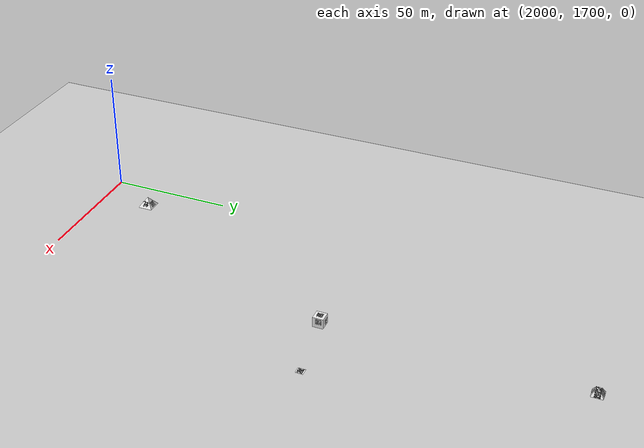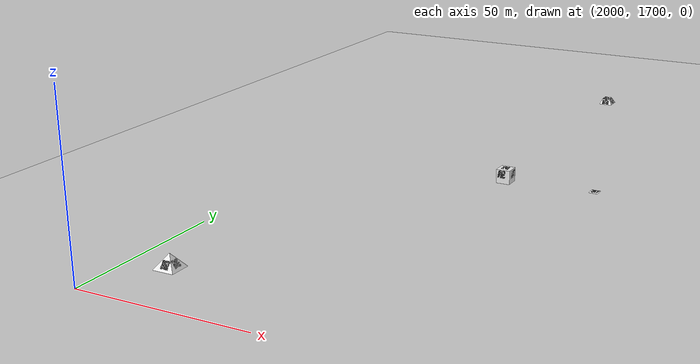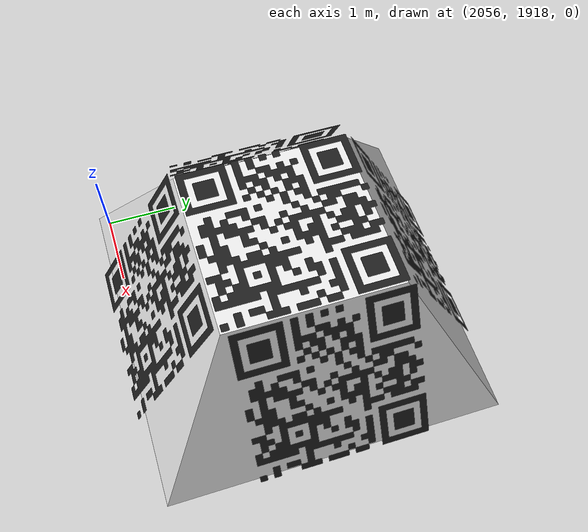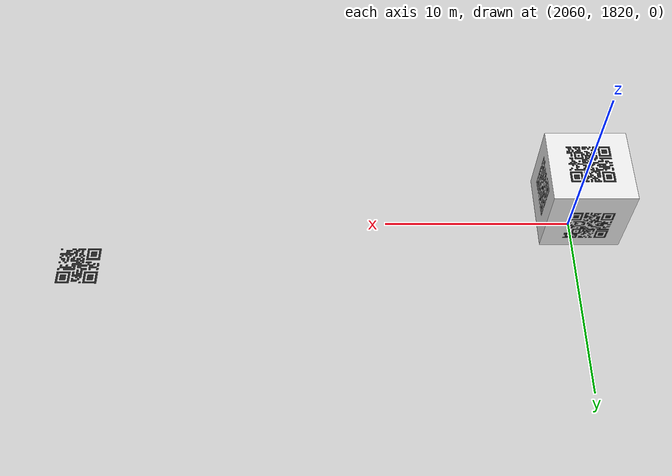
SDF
<sdf version="1.7">
 <world name="default">
  <physics name="default_physics" default="0" type="ode">
   <ode>
    <solver>
     <type>quick</type>
     <iters>100</iters>
     <sor>1</sor>
     <use_dynamic_moi_rescaling>0</use_dynamic_moi_rescaling>
    </solver>
    <constraints>
     <cfm>0</cfm>
     <erp>0.2</erp>
     <contact_max_correcting_vel>0.1</contact_max_correcting_vel>
     <contact_surface_layer>0</contact_surface_layer>
    </constraints>
   </ode>
   <real_time_update_rate>400</real_time_update_rate>
   <max_step_size>0.0025</max_step_size>
   <real_time_factor>1</real_time_factor>
  </physics>
  <scene>
   <sky><clouds><speed>5</speed></clouds></sky>
   <ambient>0.95 0.95 0.95 1</ambient>
   <background>0.3 0.3 0.3 1</background>
   <shadows>1</shadows>
  </scene>
  <gravity>0 0 -9.8</gravity>
  <magnetic_field>6e-06 2.3e-05 -4.2e-05</magnetic_field>
  <atmosphere type="adiabatic"/>
  <audio><device>default</device></audio>
  <spherical_coordinates>
   <surface_model>EARTH_WGS84</surface_model>
   <latitude_deg>0</latitude_deg>
   <longitude_deg>0</longitude_deg>
   <elevation>0</elevation>
   <heading_deg>0</heading_deg>
  </spherical_coordinates>
  <model name="ground_plane">
   <static>1</static>
   <link name="link">
    <collision name="collision">
     <geometry><plane><normal>0 0 1</normal><size>50000 50000</size></plane></geometry>
     <surface><friction><ode><mu>1</mu><mu2>1</mu2></ode></friction></surface>
    </collision>
    <visual name="runway">
     <pose>0 0 0.005 0 -0 0</pose>
     <cast_shadows>0</cast_shadows>
     <geometry><plane><normal>0 0 1</normal><size>1829 45</size></plane></geometry>
     <material>
      <script><uri>file://media/materials/scripts/gazebo.material</uri><name>Gazebo/Runway</name></script>
     </material>
    </visual>
    <visual name="grass">
     <pose>0 0 -0.1 0 -0 0</pose>
     <cast_shadows>0</cast_shadows>
     <geometry><plane><normal>0 0 1</normal><size>10000 10000</size></plane></geometry>
     <material>
      <script><uri>file://media/materials/scripts/gazebo.material</uri><name>Gazebo/Grass</name></script>
     </material>
    </visual>
   </link>
  </model>
  <model name="cube_qr_added">
   <pose>2057.46 1817.02 -0.051479 0 -0 0</pose>
   <static>1</static>
   <link name="link">
    <visual name="visual">
     <geometry>
      <mesh><scale>2 2 2</scale><uri>model://cube_qr_added/meshes/cube_qr_added.dae</uri></mesh>
     </geometry>
     <material><script><name>Gazebo/White</name><uri>__default__</uri></script></material>
    </visual>
   </link>
  </model>
  <model name="square_qr">
   <pose>2084.87 1821.16 -0.068126 0 -0 0</pose>
   <static>1</static>
   <link name="link">
    <visual name="visual">
     <geometry><mesh><uri>model://square_qr/meshes/square_qr.dae</uri></mesh></geometry>
     <material><script><name>Gazebo/White</name><uri>__default__</uri></script></material>
    </visual>
   </link>
  </model>
  <model name="piramid_qr_added">
   <pose>2008.94 1723.47 -0.028533 0 -0 0</pose>
   <static>1</static>
   <link name="link">
    <visual name="visual">
     <geometry>
      <mesh><scale>5 5 5</scale><uri>model://piramid_qr_added/meshes/piramid_qr_added.dae</uri></mesh>
     </geometry>
     <material><script><name>Gazebo/White</name><uri>__default__</uri></script></material>
    </visual>
   </link>
  </model>
  <model name="piramid_qr_cutted">
   <pose>2055.85 1917.85 -0.031499 0 -0 0</pose>
   <static>1</static>
   <link name="link">
    <visual name="visual">
     <geometry>
      <mesh><scale>3 3 3</scale><uri>model://piramid_qr_cutted/meshes/piramid_qr_cutted.dae</uri></mesh>
     </geometry>
     <material><script><name>Gazebo/White</name><uri>__default__</uri></script></material>
    </visual>
   </link>
  </model>
  <model name="teknofest_h">
   <pose>2058.14 1921.89 1.00612 -1.07261 0 0</pose>
   <static>1</static>
   <link name="link">
    <visual name="visual">
     <geometry><mesh><scale>3 3 1e-06</scale><uri>model://QR_12/meshes/teknofest_h.stl</uri></mesh></geometry>
     <material><script><name>Gazebo/Black</name><uri>__default__</uri></script></material>
    </visual>
   </link>
  </model>
  <model name="teknofest_h_0">
   <pose>2058.11 1920.15 2.03063 0 -0 0</pose>
   <static>1</static>
   <link name="link">
    <visual name="visual">
     <geometry><mesh><scale>3 3 1e-06</scale><uri>model://QR_12/meshes/teknofest_h.stl</uri></mesh></geometry>
     <material><script><name>Gazebo/Black</name><uri>__default__</uri></script></material>
    </visual>
   </link>
  </model>
  <model name="teknofest_h_1">
   <pose>2058.08 1918.35 1.09942 1.03435 -0 0</pose>
   <static>1</static>
   <link name="link">
    <visual name="visual">
     <geometry><mesh><scale>3 3 1e-06</scale><uri>model://QR_12/meshes/teknofest_h.stl</uri></mesh></geometry>
     <material><script><name>Gazebo/Black</name><uri>__default__</uri></script></material>
    </visual>
   </link>
  </model>
  <model name="teknofest_h_2">
   <pose>2056.31 1920.13 1.05679 0 -1.09274 0</pose>
   <static>1</static>
   <link name="link">
    <visual name="visual">
     <geometry><mesh><scale>3 3 1e-06</scale><uri>model://QR_12/meshes/teknofest_h.stl</uri></mesh></geometry>
     <material><script><name>Gazebo/Black</name><uri>__default__</uri></script></material>
    </visual>
   </link>
  </model>
  <model name="teknofest_h_3">
   <pose>2059.89 1920.2 1.05405 0 1.04273 0</pose>
   <static>1</static>
   <link name="link">
    <visual name="visual">
     <geometry><mesh><scale>3 3 1e-06</scale><uri>model://QR_12/meshes/teknofest_h.stl</uri></mesh></geometry>
     <material><script><name>Gazebo/Black</name><uri>__default__</uri></script></material>
    </visual>
   </link>
  </model>
  <model name="testucusu_m">
   <pose>2086.38 1822.73 0.049201 0 -0 0</pose>
   <static>1</static>
   <link name="link">
    <visual name="visual">
     <geometry><mesh><scale>3 3 1e-06</scale><uri>model://QR_06/meshes/testucusu_m.stl</uri></mesh></geometry>
     <material><script><name>Gazebo/Black</name><uri>__default__</uri></script></material>
    </visual>
   </link>
  </model>
  <model name="mustafakemalataturk_m">
   <pose>2059.62 1819.16 4.25702 0 -0 0</pose>
   <static>1</static>
   <link name="link">
    <visual name="visual">
     <geometry>
      <mesh><scale>3 3 1e-06</scale><uri>model://QR_14/meshes/mustafakemalataturk_m.stl</uri></mesh>
     </geometry>
     <material><script><name>Gazebo/Black</name><uri>__default__</uri></script></material>
    </visual>
   </link>
  </model>
  <model name="mustafakemalataturk_m_0">
   <pose>2059.53 1821.41 1.9761 1.5708 -0 0</pose>
   <static>1</static>
   <link name="link">
    <visual name="visual">
     <geometry>
      <mesh><scale>3 3 1e-06</scale><uri>model://QR_14/meshes/mustafakemalataturk_m.stl</uri></mesh>
     </geometry>
     <material><script><name>Gazebo/Black</name><uri>__default__</uri></script></material>
    </visual>
   </link>
  </model>
  <model name="mustafakemalataturk_m_1">
   <pose>2057.39 1819.65 2.18035 3.14159 -1.57079 3.14159</pose>
   <static>1</static>
   <link name="link">
    <visual name="visual">
     <geometry>
      <mesh><scale>3 3 1e-06</scale><uri>model://QR_14/meshes/mustafakemalataturk_m.stl</uri></mesh>
     </geometry>
     <material><script><name>Gazebo/Black</name><uri>__default__</uri></script></material>
    </visual>
   </link>
  </model>
  <model name="mustafakemalataturk_m_2">
   <pose>2059.16 1816.94 2.78986 1.5708 -0 0</pose>
   <static>1</static>
   <link name="link">
    <visual name="visual">
     <geometry>
      <mesh><scale>3 3 1e-06</scale><uri>model://QR_14/meshes/mustafakemalataturk_m.stl</uri></mesh>
     </geometry>
     <material><script><name>Gazebo/Black</name><uri>__default__</uri></script></material>
    </visual>
   </link>
  </model>
  <model name="mustafakemalataturk_m_3">
   <pose>2061.82 1819.38 2.6622 3.14159 -1.57079 3.14159</pose>
   <static>1</static>
   <link name="link">
    <visual name="visual">
     <geometry>
      <mesh><scale>3 3 1e-06</scale><uri>model://QR_14/meshes/mustafakemalataturk_m.stl</uri></mesh>
     </geometry>
     <material><script><name>Gazebo/Black</name><uri>__default__</uri></script></material>
    </visual>
   </link>
  </model>
  <model name="istikbalgoklerdedir_q">
   <pose>2012.07 1722.62 1.32004 -0.905158 0 0</pose>
   <static>1</static>
   <link name="link">
    <visual name="visual">
     <geometry>
      <mesh><scale>3 3 1e-06</scale><uri>model://QR_17/meshes/istikbalgoklerdedir_q.stl</uri></mesh>
     </geometry>
     <material><script><name>Gazebo/Black</name><uri>__default__</uri></script></material>
    </visual>
   </link>
  </model>
  <model name="istikbalgoklerdedir_q_0">
   <pose>2009.89 1720.44 1.366 0 -0.921999 0</pose>
   <static>1</static>
   <link name="link">
    <visual name="visual">
     <geometry>
      <mesh><scale>3 3 1e-06</scale><uri>model://QR_17/meshes/istikbalgoklerdedir_q.stl</uri></mesh>
     </geometry>
     <material><script><name>Gazebo/Black</name><uri>__default__</uri></script></material>
    </visual>
   </link>
  </model>
  <model name="istikbalgoklerdedir_q_1">
   <pose>2013.91 1720.41 1.60179 0 0.915981 0</pose>
   <static>1</static>
   <link name="link">
    <visual name="visual">
     <geometry>
      <mesh><scale>3 3 1e-06</scale><uri>model://QR_17/meshes/istikbalgoklerdedir_q.stl</uri></mesh>
     </geometry>
     <material><script><name>Gazebo/Black</name><uri>__default__</uri></script></material>
    </visual>
   </link>
  </model>
  <model name="istikbalgoklerdedir_q_2">
   <pose>2012.12 1718.46 1.52238 0.920054 -0 0</pose>
   <static>1</static>
   <link name="link">
    <visual name="visual">
     <geometry>
      <mesh><scale>3 3 1e-06</scale><uri>model://QR_17/meshes/istikbalgoklerdedir_q.stl</uri></mesh>
     </geometry>
     <material><script><name>Gazebo/Black</name><uri>__default__</uri></script></material>
    </visual>
   </link>
  </model>
  <light name="sun" type="directional">
   <pose>1865.5 2039.39 10 0 -0 0</pose>
   <diffuse>0.8 0.8 0.8 1</diffuse>
   <specular>0.2 0.2 0.2 1</specular>
   <attenuation>
    <range>1000</range>
    <constant>0.9</constant>
    <linear>0.01</linear>
    <quadratic>0.001</quadratic>
   </attenuation>
   <direction>-0.5 0.1 -0.9</direction>
   <spot><inner_angle>0</inner_angle><outer_angle>0</outer_angle><falloff>0</falloff></spot>
  </light>
 </world>
</sdf>
